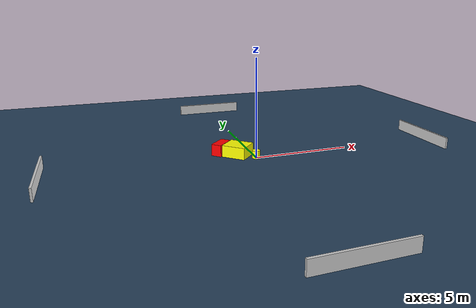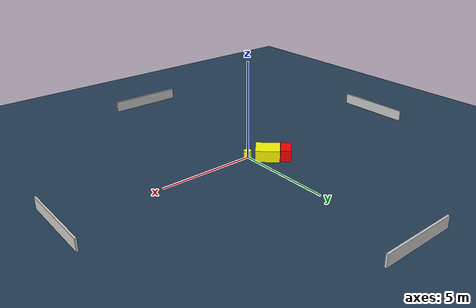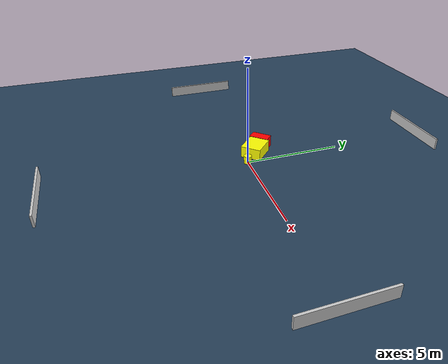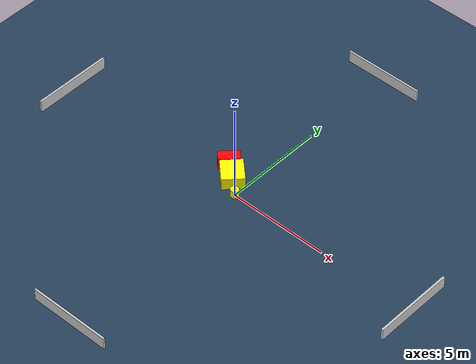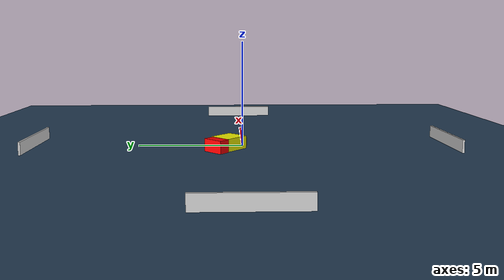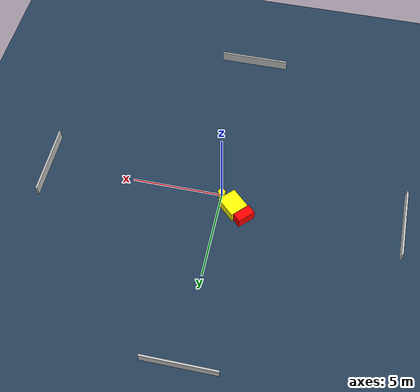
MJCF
<?xml version="1.0" ?>
<mujoco model="generated_environment">
  <option timestep="0.01" integrator="RK4" cone="elliptic"/>
  <default>
    <geom density="1"/>
  </default>
  <asset>
    <texture builtin="gradient" height="3072" name="skybox" rgb1="0.3 0.5 0.7" rgb2="0 0 0" type="skybox" width="512"/>
    <texture builtin="checker" height="300" name="groundplane" rgb1="0.2 0.3 0.4" rgb2="0.1 0.2 0.3" type="2d" width="300"/>
    <material name="groundplane" reflectance="0.2" texrepeat="5 5" texture="groundplane"/>
  </asset>
  <worldbody>
    <light dir="0 0 -1" directional="true" pos="0 0 1.5"/>
    <geom condim="3" friction="0.5 0.005 0.001" material="groundplane" name="floor" pos="0 0 0" size="0 0 0.05" type="plane"/>
    <body name="walls">
      <geom name="wall_1" condim="4" pos="-10.0 0.0 0.3" rgba="0.800000011920929 0.800000011920929 0.800000011920929 1.0" size="0.05 2.0 0.3" type="box"/>
      <geom name="wall_2" condim="4" pos="10.0 0.0 0.3" rgba="0.800000011920929 0.800000011920929 0.800000011920929 1.0" size="0.05 2.0 0.3" type="box"/>
      <geom name="wall_3" condim="4" pos="0.0 -10.0 0.3" rgba="0.800000011920929 0.800000011920929 0.800000011920929 1.0" size="2.0 0.05 0.3" type="box"/>
      <geom name="wall_4" condim="4" pos="0.0 10.0 0.3" rgba="0.800000011920929 0.800000011920929 0.800000011920929 1.0" size="2.0 0.05 0.3" type="box"/>
    </body>
    <body name="robot">
      <joint name="joint_x" type="slide" pos="0 0 0" axis="1 0 0"/>
      <joint name="joint_y" type="slide" pos="0 0 0" axis="0 1 0"/>
      <geom name="robot" type="cylinder" pos="0.0 0.0 0.2" size="0.2 0.2 0.0" mass="5.0" friction="1.0 0.005 0.0001" condim="4" rgba="1.0 1.0 0.0 1.0"/>
    </body>
    <body name="obstacle_1_movable">
      <geom name="obstacle_1_movable" condim="4" pos="-0.7587053338635635 0.6689178583601305 0.3" euler="0 0 226.7179799670383" friction="0.0 0.005 0.001" rgba="1.0 1.0 0.0 1.0" size="0.5343679353765453 0.6172698474997946 0.3" type="box" mass="0.1"/>
      <joint type="free"/>
    </body>
    <body name="obstacle_2_static">
      <geom name="obstacle_2_static" condim="4" pos="-1.4778296166435694 1.2325800679421517 0.3" euler="0 0 316.01360332355387" friction="0.0 0.005 0.001" rgba="1.0 0.0 0.0 1.0" size="0.26497936489020046 0.5106863943027355 0.3" type="box"/>
    </body>
  </worldbody>
  <actuator>
    <motor name="actuator_x" joint="joint_x" gear="1" ctrlrange="-1 1"/>
    <motor name="actuator_y" joint="joint_y" gear="1" ctrlrange="-1 1"/>
  </actuator>
</mujoco>
